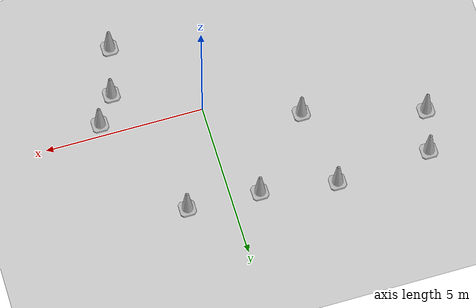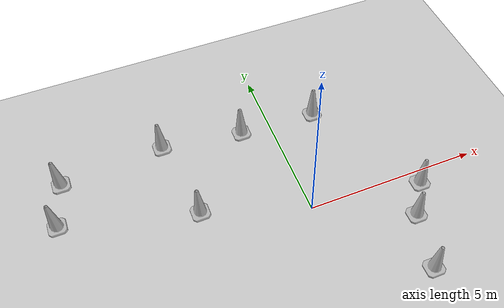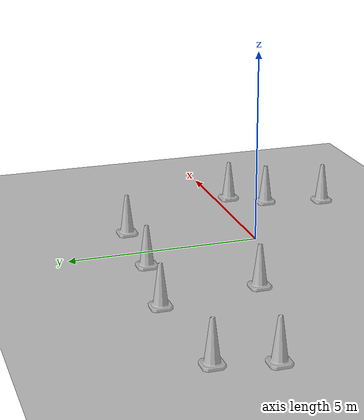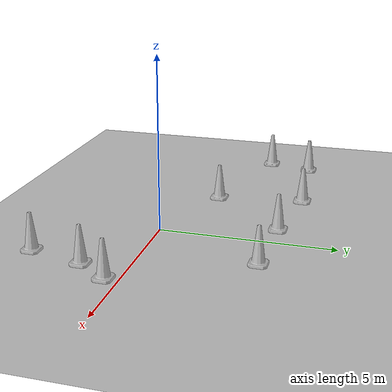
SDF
<sdf version="1.7">
 <world name="default">
  <light name="sun" type="directional">
   <pose>0 0 10 0 -0 0</pose>
   <diffuse>0.8 0.8 0.8 1</diffuse>
   <specular>0.2 0.2 0.2 1</specular>
   <attenuation>
    <range>1000</range>
    <constant>0.9</constant>
    <linear>0.01</linear>
    <quadratic>0.001</quadratic>
   </attenuation>
   <direction>-0.5 0.1 -0.9</direction>
   <spot><inner_angle>0</inner_angle><outer_angle>0</outer_angle><falloff>0</falloff></spot>
  </light>
  <model name="ground_plane">
   <static>1</static>
   <link name="link">
    <collision name="collision">
     <geometry><plane><normal>0 0 1</normal><size>100 100</size></plane></geometry>
     <surface>
      <contact><collide_bitmask>65535</collide_bitmask></contact>
      <friction><ode><mu>100</mu><mu2>50</mu2></ode></friction>
     </surface>
    </collision>
    <visual name="visual">
     <cast_shadows>0</cast_shadows>
     <geometry><plane><normal>0 0 1</normal><size>100 100</size></plane></geometry>
     <material>
      <script><uri>file://media/materials/scripts/gazebo.material</uri><name>Gazebo/Grey</name></script>
     </material>
    </visual>
   </link>
  </model>
  <gravity>0 0 -9.8</gravity>
  <magnetic_field>6e-06 2.3e-05 -4.2e-05</magnetic_field>
  <atmosphere type="adiabatic"/>
  <physics type="ode">
   <max_step_size>0.001</max_step_size>
   <real_time_factor>1</real_time_factor>
   <real_time_update_rate>1000</real_time_update_rate>
  </physics>
  <scene><ambient>0.4 0.4 0.4 1</ambient><background>0.7 0.7 0.7 1</background><shadows>1</shadows></scene>
  <audio><device>default</device></audio>
  <spherical_coordinates>
   <surface_model>EARTH_WGS84</surface_model>
   <latitude_deg>0</latitude_deg>
   <longitude_deg>0</longitude_deg>
   <elevation>0</elevation>
   <heading_deg>0</heading_deg>
  </spherical_coordinates>
  <model name="Construction Cone">
   <link name="link">
    <collision name="collision">
     <geometry>
      <mesh><scale>10 10 10</scale><uri>model://construction_cone/meshes/construction_cone.dae</uri></mesh>
     </geometry>
    </collision>
    <visual name="visual">
     <geometry>
      <mesh><scale>10 10 10</scale><uri>model://construction_cone/meshes/construction_cone.dae</uri></mesh>
     </geometry>
    </visual>
    <inertial>
     <inertia><ixx>1</ixx><ixy>0</ixy><ixz>0</ixz><iyy>1</iyy><iyz>0</iyz><izz>1</izz></inertia>
     <mass>1</mass>
    </inertial>
   </link>
   <pose>-0.890773 3.21614 -0 0 -1e-06 0</pose>
  </model>
  <model name="Construction Cone_0">
   <link name="link">
    <collision name="collision">
     <geometry>
      <mesh><scale>10 10 10</scale><uri>model://construction_cone/meshes/construction_cone.dae</uri></mesh>
     </geometry>
    </collision>
    <visual name="visual">
     <geometry>
      <mesh><scale>10 10 10</scale><uri>model://construction_cone/meshes/construction_cone.dae</uri></mesh>
     </geometry>
    </visual>
    <inertial>
     <inertia><ixx>1</ixx><ixy>0</ixy><ixz>0</ixz><iyy>1</iyy><iyz>0</iyz><izz>1</izz></inertia>
     <mass>1</mass>
    </inertial>
   </link>
   <pose>-3.26665 3.56576 -0 0 -0 0</pose>
  </model>
  <model name="Construction Cone_1">
   <link name="link">
    <collision name="collision">
     <geometry>
      <mesh><scale>10 10 10</scale><uri>model://construction_cone/meshes/construction_cone.dae</uri></mesh>
     </geometry>
    </collision>
    <visual name="visual">
     <geometry>
      <mesh><scale>10 10 10</scale><uri>model://construction_cone/meshes/construction_cone.dae</uri></mesh>
     </geometry>
    </visual>
    <inertial>
     <inertia><ixx>1</ixx><ixy>0</ixy><ixz>0</ixz><iyy>1</iyy><iyz>0</iyz><izz>1</izz></inertia>
     <mass>1</mass>
    </inertial>
   </link>
   <pose>-6.27534 3.35607 -0 0 -1e-06 0</pose>
  </model>
  <model name="Construction Cone_2">
   <link name="link">
    <collision name="collision">
     <geometry>
      <mesh><scale>10 10 10</scale><uri>model://construction_cone/meshes/construction_cone.dae</uri></mesh>
     </geometry>
    </collision>
    <visual name="visual">
     <geometry>
      <mesh><scale>10 10 10</scale><uri>model://construction_cone/meshes/construction_cone.dae</uri></mesh>
     </geometry>
    </visual>
    <inertial>
     <inertia><ixx>1</ixx><ixy>0</ixy><ixz>0</ixz><iyy>1</iyy><iyz>0</iyz><izz>1</izz></inertia>
     <mass>1</mass>
    </inertial>
   </link>
   <pose>-6.62228 2.01254 -0 0 -1e-06 0</pose>
  </model>
  <model name="Construction Cone_3">
   <link name="link">
    <collision name="collision">
     <geometry>
      <mesh><scale>10 10 10</scale><uri>model://construction_cone/meshes/construction_cone.dae</uri></mesh>
     </geometry>
    </collision>
    <visual name="visual">
     <geometry>
      <mesh><scale>10 10 10</scale><uri>model://construction_cone/meshes/construction_cone.dae</uri></mesh>
     </geometry>
    </visual>
    <inertial>
     <inertia><ixx>1</ixx><ixy>0</ixy><ixz>0</ixz><iyy>1</iyy><iyz>0</iyz><izz>1</izz></inertia>
     <mass>1</mass>
    </inertial>
   </link>
   <pose>-2.89592 1.00947 0 -0 -0 -0</pose>
  </model>
  <model name="Construction Cone_4">
   <link name="link">
    <collision name="collision">
     <geometry>
      <mesh><scale>10 10 10</scale><uri>model://construction_cone/meshes/construction_cone.dae</uri></mesh>
     </geometry>
    </collision>
    <visual name="visual">
     <geometry>
      <mesh><scale>10 10 10</scale><uri>model://construction_cone/meshes/construction_cone.dae</uri></mesh>
     </geometry>
    </visual>
    <inertial>
     <inertia><ixx>1</ixx><ixy>0</ixy><ixz>0</ixz><iyy>1</iyy><iyz>0</iyz><izz>1</izz></inertia>
     <mass>1</mass>
    </inertial>
   </link>
   <pose>2.18998 -2.85315 -0 0 -0 0</pose>
  </model>
  <model name="Construction Cone_5">
   <link name="link">
    <collision name="collision">
     <geometry>
      <mesh><scale>10 10 10</scale><uri>model://construction_cone/meshes/construction_cone.dae</uri></mesh>
     </geometry>
    </collision>
    <visual name="visual">
     <geometry>
      <mesh><scale>10 10 10</scale><uri>model://construction_cone/meshes/construction_cone.dae</uri></mesh>
     </geometry>
    </visual>
    <inertial>
     <inertia><ixx>1</ixx><ixy>0</ixy><ixz>0</ixz><iyy>1</iyy><iyz>0</iyz><izz>1</izz></inertia>
     <mass>1</mass>
    </inertial>
   </link>
   <pose>3.18456 -0.387363 -6e-06 -4e-06 0 0</pose>
  </model>
  <model name="Construction Cone_6">
   <link name="link">
    <collision name="collision">
     <geometry>
      <mesh><scale>10 10 10</scale><uri>model://construction_cone/meshes/construction_cone.dae</uri></mesh>
     </geometry>
    </collision>
    <visual name="visual">
     <geometry>
      <mesh><scale>10 10 10</scale><uri>model://construction_cone/meshes/construction_cone.dae</uri></mesh>
     </geometry>
    </visual>
    <inertial>
     <inertia><ixx>1</ixx><ixy>0</ixy><ixz>0</ixz><iyy>1</iyy><iyz>0</iyz><izz>1</izz></inertia>
     <mass>1</mass>
    </inertial>
   </link>
   <pose>1.38669 3.11055 -0 0 -0 0</pose>
  </model>
  <model name="Construction Cone_7">
   <link name="link">
    <collision name="collision">
     <geometry>
      <mesh><scale>10 10 10</scale><uri>model://construction_cone/meshes/construction_cone.dae</uri></mesh>
     </geometry>
    </collision>
    <visual name="visual">
     <geometry>
      <mesh><scale>10 10 10</scale><uri>model://construction_cone/meshes/construction_cone.dae</uri></mesh>
     </geometry>
    </visual>
    <inertial>
     <inertia><ixx>1</ixx><ixy>0</ixy><ixz>0</ixz><iyy>1</iyy><iyz>0</iyz><izz>1</izz></inertia>
     <mass>1</mass>
    </inertial>
   </link>
   <pose>2.57214 -1.27543 -0 0 -1e-06 0</pose>
  </model>
 </world>
</sdf>
